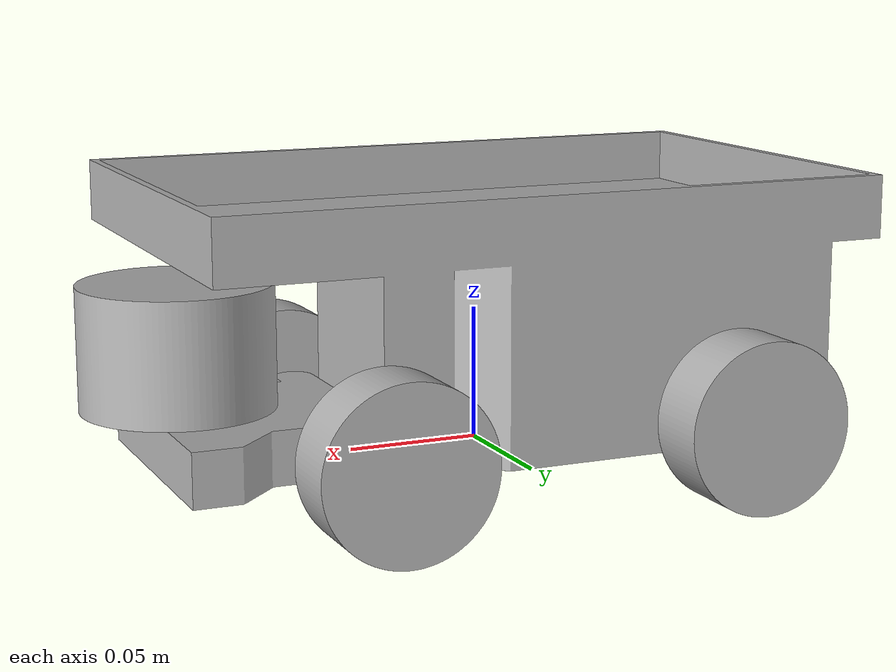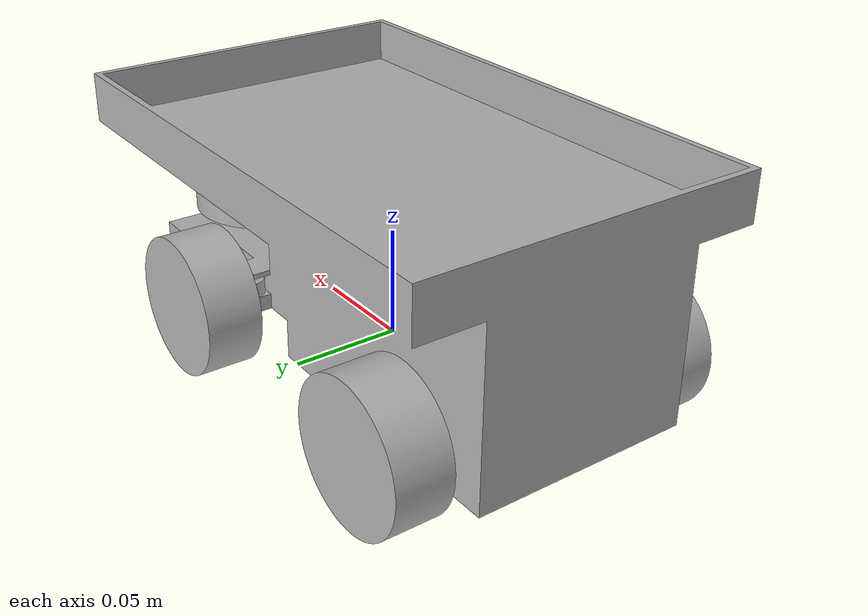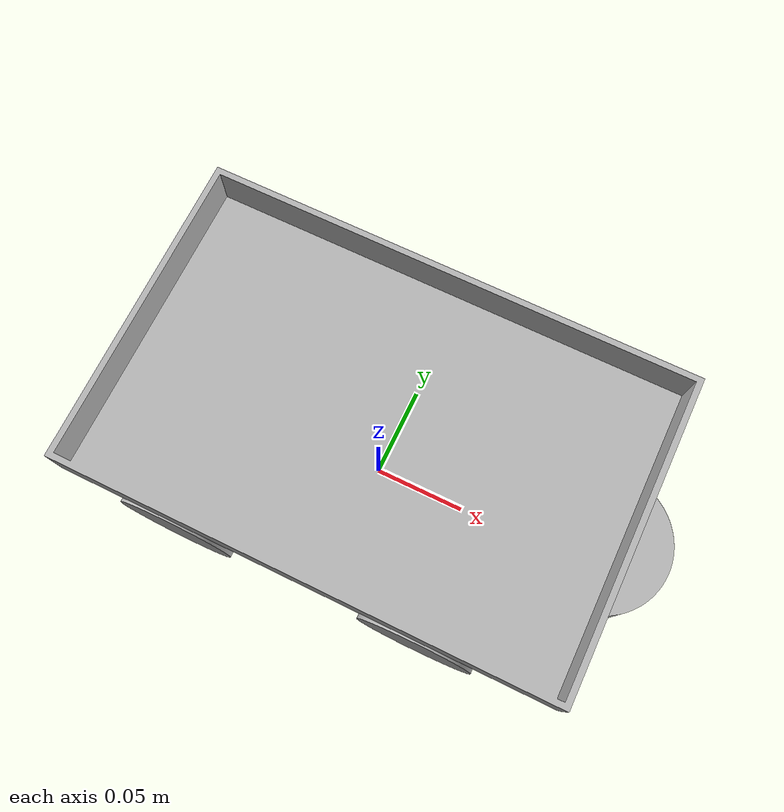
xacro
<?xml version="1.0" ?>
<robot name="rc_car_test" xmlns:xacro="http://www.ros.org/wiki/xacro">

<xacro:include filename="$(find rc_car_test_description)/urdf/materials.xacro" />
<xacro:include filename="$(find rc_car_test_description)/urdf/rc_car_test.ros2control" />
<xacro:include filename="$(find rc_car_test_description)/urdf/rc_car_test.gazebo" />

<!-- 회전 기준 프레임: base_link_rot (z축으로 180도 회전) -->
<link name="base_link_rot">
  <!-- Gazebo가 요구하는 최소 관성; 로봇 전체 질량은 base_link에 있음 -->
  <inertial>
    <origin xyz="0 0 0" rpy="0 0 0"/>
    <mass value="0.0001"/>
    <inertia ixx="1e-6" iyy="1e-6" izz="1e-6" ixy="0.0" ixz="0.0" iyz="0.0"/>
  </inertial>
</link>

<!-- 실제 로봇 바디 -->
<link name="base_link">
  <inertial>
    <origin xyz="0.10 0 0.03"/>
    <mass value="0.6"/>   <!-- 기존 10kg → 0.6kg -->
    <inertia ixx="0.002" iyy="0.004" izz="0.005"
             ixy="0.0" ixz="0.0" iyz="0.0"/>
  </inertial>
  <visual>
    <origin xyz="0 0 0" rpy="0 0 0"/>
    <geometry>
      <mesh filename="file://$(find rc_car_test_description)/meshes/visual/base_link.stl" scale="0.001 0.001 0.001"/>
    </geometry>
    <material name="silver"/>
  </visual>
  <collision>
    <origin xyz="0 0 0" rpy="0 0 0"/>
    <geometry>
      <mesh filename="file://$(find rc_car_test_description)/meshes/collision/base_link.stl" scale="0.001 0.001 0.001"/>
    </geometry>
  </collision>
</link>

<!-- Ackermann 기준점: rear axle center -->
<link name="rear_axle">
  <inertial>
    <origin xyz="0 0 0" rpy="0 0 0"/>
    <mass value="0.0001"/>
    <inertia ixx="1e-6" iyy="1e-6" izz="1e-6" ixy="0.0" ixz="0.0" iyz="0.0"/>
  </inertial>
</link>

<!-- base_link_rot -> base_link : z축 180도 회전 -->
<joint name="base_rot_joint" type="fixed">
  <origin xyz="0 0 0" rpy="0 0 3.1415926535"/>
  <parent link="base_link_rot"/>
  <child link="base_link"/>
</joint>

<joint name="rear_axle_joint" type="fixed">
  <!-- rear wheel centers: base_link x=0.0825, z=0.0125 -> base_link_rot x=-0.0825 -->
  <origin xyz="-0.0825 0 0.0125" rpy="0 0 0"/>
  <parent link="base_link_rot"/>
  <child link="rear_axle"/>
</joint>

<link name="steering_right_2">
  <inertial>
    <origin xyz="0 0 0"/>
    <mass value="0.01"/>
    <inertia ixx="1e-6" iyy="1e-6" izz="2e-6"/>
  </inertial>
  <visual>
    <origin xyz="0.0575 -0.042076 -0.0075" rpy="0 0 0"/>
    <geometry>
      <mesh filename="file://$(find rc_car_test_description)/meshes/visual/steering_right_2.stl" scale="0.001 0.001 0.001"/>
    </geometry>
    <material name="silver"/>
  </visual>
  <collision>
    <origin xyz="0.0575 -0.042076 -0.0075" rpy="0 0 0"/>
    <geometry>
      <mesh filename="file://$(find rc_car_test_description)/meshes/collision/steering_right_2.stl" scale="0.001 0.001 0.001"/>
    </geometry>
  </collision>
</link>

<link name="lidar_link_1">
  <inertial>
    <origin xyz="0 0 0"/>
    <mass value="0.12"/>  <!-- 120g 정도 -->
    <inertia ixx="4e-5" iyy="4e-5" izz="6e-5"/>
  </inertial>
  <visual>
    <origin xyz="0.115 0.0 -0.023" rpy="0 0 0"/>
    <geometry>
      <mesh filename="file://$(find rc_car_test_description)/meshes/visual/lidar_link_1.stl" scale="0.001 0.001 0.001"/>
    </geometry>
    <material name="silver"/>
  </visual>
  <collision>
    <origin xyz="0.115 0.0 -0.023" rpy="0 0 0"/>
    <geometry>
      <mesh filename="file://$(find rc_car_test_description)/meshes/collision/lidar_link_1.stl" scale="0.001 0.001 0.001"/>
    </geometry>
  </collision>
</link>

<link name="rear_right_wheel_1">
  <inertial>
    <origin xyz="0 0.015 0"/>
    <mass value="0.05"/>  <!-- 기존 0.08kg → 0.05kg -->
    <inertia ixx="8e-6" iyy="1.6e-5" izz="8e-6"
            ixy="0.0" ixz="0.0" iyz="0.0"/>
  </inertial>

  <visual>
    <origin xyz="-0.0825 -0.053 -0.0125" rpy="0 0 0"/>
    <geometry>
      <mesh filename="file://$(find rc_car_test_description)/meshes/visual/rear_right_wheel_1.stl" scale="0.001 0.001 0.001"/>
    </geometry>
    <material name="silver"/>
  </visual>
  <collision>
    <origin xyz="-0.0825 -0.053 -0.0125" rpy="0 0 0"/>
    <geometry>
      <mesh filename="file://$(find rc_car_test_description)/meshes/collision/rear_right_wheel_1.stl" scale="0.001 0.001 0.001"/>
    </geometry>
  </collision>
</link>

<link name="front_right_wheel_1">
  <inertial>
    <origin xyz="0 0.015 0"/>
    <mass value="0.05"/>  <!-- 기존 0.08kg → 0.05kg -->
    <inertia ixx="8e-6" iyy="1.6e-5" izz="8e-6"
            ixy="0.0" ixz="0.0" iyz="0.0"/>
  </inertial>
  <visual>
    <origin xyz="0.0575 -0.053 -0.01125" rpy="0 0 0"/>
    <geometry>
      <mesh filename="file://$(find rc_car_test_description)/meshes/visual/front_right_wheel_1.stl" scale="0.001 0.001 0.001"/>
    </geometry>
    <material name="silver"/>
  </visual>
  <collision>
    <origin xyz="0.0575 -0.053 -0.01125" rpy="0 0 0"/>
    <geometry>
      <mesh filename="file://$(find rc_car_test_description)/meshes/collision/front_right_wheel_1.stl" scale="0.001 0.001 0.001"/>
    </geometry>
  </collision>
</link>

<link name="rear_left_wheel_1">
  <inertial>
    <origin xyz="0 -0.015 0"/>
    <mass value="0.05"/>  <!-- 기존 0.08kg → 0.05kg -->
    <inertia ixx="8e-6" iyy="1.6e-5" izz="8e-6"
            ixy="0.0" ixz="0.0" iyz="0.0"/>
  </inertial>
  <visual>
    <origin xyz="-0.0825 0.053 -0.0125" rpy="0 0 0"/>
    <geometry>
      <mesh filename="file://$(find rc_car_test_description)/meshes/visual/rear_left_wheel_1.stl" scale="0.001 0.001 0.001"/>
    </geometry>
    <material name="silver"/>
  </visual>
  <collision>
    <origin xyz="-0.0825 0.053 -0.0125" rpy="0 0 0"/>
    <geometry>
      <mesh filename="file://$(find rc_car_test_description)/meshes/collision/rear_left_wheel_1.stl" scale="0.001 0.001 0.001"/>
    </geometry>
  </collision>
</link>

<link name="front_left_wheel_1">
  <inertial>
    <origin xyz="0 -0.015 0"/>
    <mass value="0.05"/>  <!-- 기존 0.08kg → 0.05kg -->
    <inertia ixx="8e-6" iyy="1.6e-5" izz="8e-6"
            ixy="0.0" ixz="0.0" iyz="0.0"/>
  </inertial>
  <visual>
    <origin xyz="0.0575 0.053 -0.01125" rpy="0 0 0"/>
    <geometry>
      <mesh filename="file://$(find rc_car_test_description)/meshes/visual/front_left_wheel_1.stl" scale="0.001 0.001 0.001"/>
    </geometry>
    <material name="silver"/>
  </visual>
  <collision>
    <origin xyz="0.0575 0.053 -0.01125" rpy="0 0 0"/>
    <geometry>
      <mesh filename="file://$(find rc_car_test_description)/meshes/collision/front_left_wheel_1.stl" scale="0.001 0.001 0.001"/>
    </geometry>
  </collision>
</link>

<link name="steering_left_1">
  <inertial>
    <origin xyz="0 0 0"/>
    <mass value="0.01"/>
    <inertia ixx="1e-6" iyy="1e-6" izz="2e-6"/>
  </inertial>
  <visual>
    <origin xyz="0.0575 0.042076 -0.0075" rpy="0 0 0"/>
    <geometry>
      <mesh filename="file://$(find rc_car_test_description)/meshes/visual/steering_left_1.stl" scale="0.001 0.001 0.001"/>
    </geometry>
    <material name="silver"/>
  </visual>
  <collision>
    <origin xyz="0.0575 0.042076 -0.0075" rpy="0 0 0"/>
    <geometry>
      <mesh filename="file://$(find rc_car_test_description)/meshes/collision/steering_left_1.stl" scale="0.001 0.001 0.001"/>
    </geometry>
  </collision>
</link>

<joint name="steering_joint_right" type="revolute">
  <origin xyz="-0.0575 0.042076 0.0075" rpy="0 0 0"/>
  <parent link="base_link"/>
  <child link="steering_right_2"/>
  <axis xyz="-0.0 -0.0 1.0"/>
  <limit upper="0.785398" lower="-0.785398" effort="20.0" velocity="2.0"/>
  <dynamics damping="1.0" friction="0.2"/>
</joint>

<joint name="fix_9" type="fixed">
  <origin xyz="-0.115 0.0 0.023" rpy="0 0 0"/>
  <parent link="base_link"/>
  <child link="lidar_link_1"/>
</joint>

<joint name="wheel_joint_rear_right" type="continuous">
  <origin xyz="0.0825 0.053 0.0125" rpy="0 0 0"/>
  <parent link="base_link"/>
  <child link="rear_right_wheel_1"/>
  <axis xyz="-0.0 -1.0 -0.0"/>
  <limit effort="5.0" velocity="30.0"/>
  <dynamics damping="0.1" friction="0.05"/>
</joint>

<joint name="wheel_joint_front_right" type="continuous">
  <origin xyz="0.0 0.010924 0.00375" rpy="0 0 0"/>
  <parent link="steering_right_2"/>
  <child link="front_right_wheel_1"/>
  <axis xyz="-0.0 -1.0 -0.0"/>
  <limit effort="5.0" velocity="30.0"/>
  <dynamics damping="0.1" friction="0.05"/>
</joint>

<joint name="wheel_joint_rear_left" type="continuous">
  <origin xyz="0.0825 -0.053 0.0125" rpy="0 0 0"/>
  <parent link="base_link"/>
  <child link="rear_left_wheel_1"/>
  <axis xyz="0.0 -1.0 -0.0"/>
  <limit effort="5.0" velocity="30.0"/>
  <dynamics damping="0.1" friction="0.05"/>
</joint>

<joint name="wheel_joint_front_left" type="continuous">
  <origin xyz="0.0 -0.010924 0.00375" rpy="0 0 0"/>
  <parent link="steering_left_1"/>
  <child link="front_left_wheel_1"/>
  <axis xyz="-0.0 -1.0 -0.0"/>
  <limit effort="5.0" velocity="30.0"/>
  <dynamics damping="0.1" friction="0.05"/>
</joint>

<joint name="steering_joint_left" type="revolute">
  <origin xyz="-0.0575 -0.042076 0.0075" rpy="0 0 0"/>
  <parent link="base_link"/>
  <child link="steering_left_1"/>
  <axis xyz="-0.0 -0.0 1.0"/>
  <limit upper="0.785398" lower="-0.785398" effort="20.0" velocity="2.0"/>
  <dynamics damping="1.0" friction="0.2"/>
</joint>

</robot>

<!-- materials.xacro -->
<robot name="rc_car_test" xmlns:xacro="http://www.ros.org/wiki/xacro" >

<material name="silver">
  <color rgba="0.700 0.700 0.700 1.000"/>
</material>

</robot>

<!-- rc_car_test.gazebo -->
<robot name="rc_car_test" xmlns:xacro="http://www.ros.org/wiki/xacro" >

<xacro:property name="body_color" value="Gazebo/Silver" />

<gazebo reference="base_link">
  <material>${body_color}</material>
  <mu1>0.2</mu1>
  <mu2>0.2</mu2>
  <self_collide>true</self_collide>
  <gravity>true</gravity>
</gazebo>

<gazebo reference="steering_right_2">
  <material>${body_color}</material>
  <mu1>0.2</mu1>
  <mu2>0.2</mu2>
  <self_collide>true</self_collide>
</gazebo>

<gazebo reference="lidar_link_1">
  <material>${body_color}</material>
  <mu1>0.2</mu1>
  <mu2>0.2</mu2>
  <self_collide>true</self_collide>
  <sensor name="lidar_link_1" type="gpu_lidar">
    <pose>0 0 0.03 0 0 3.14159</pose>
    <update_rate>20</update_rate>
    <topic>lidar/scan</topic>
    <frame_id>lidar_link_1</frame_id>
    <lidar>
      <scan>
        <horizontal>
          <samples>720</samples>
          <resolution>1</resolution>
          <min_angle>-2.1817</min_angle>
          <max_angle>2.1817</max_angle>
        </horizontal>
      </scan>
      <range>
        <min>0.1</min>
        <max>12.0</max>
        <resolution>0.01</resolution>
      </range>
    </lidar>
    <always_on>1</always_on>
    <visualize>false</visualize>
    <self_collide>false</self_collide>
  </sensor>
</gazebo>

<gazebo reference="front_left_wheel_1">
  <mu1>2.5</mu1>
  <mu2>5.0</mu2>
  <kp>1e5</kp>
  <kd>1e2</kd>
  <min_depth>0.001</min_depth>
</gazebo>

<gazebo reference="front_right_wheel_1">
  <mu1>2.5</mu1>
  <mu2>5.0</mu2>
  <kp>1e5</kp>
  <kd>1e2</kd>
  <min_depth>0.001</min_depth>
</gazebo>

<gazebo reference="rear_left_wheel_1">
  <mu1>2.5</mu1>
  <mu2>5.0</mu2>
  <kp>1e5</kp>
  <kd>1e2</kd>
  <min_depth>0.001</min_depth>
</gazebo>

<gazebo reference="rear_right_wheel_1">
  <mu1>2.5</mu1>
  <mu2>5.0</mu2>
  <kp>1e5</kp>
  <kd>1e2</kd>
  <min_depth>0.001</min_depth>
</gazebo>

<gazebo reference="steering_left_1">
  <material>${body_color}</material>
  <mu1>0.2</mu1>
  <mu2>0.2</mu2>
  <self_collide>true</self_collide>
</gazebo>

</robot>
